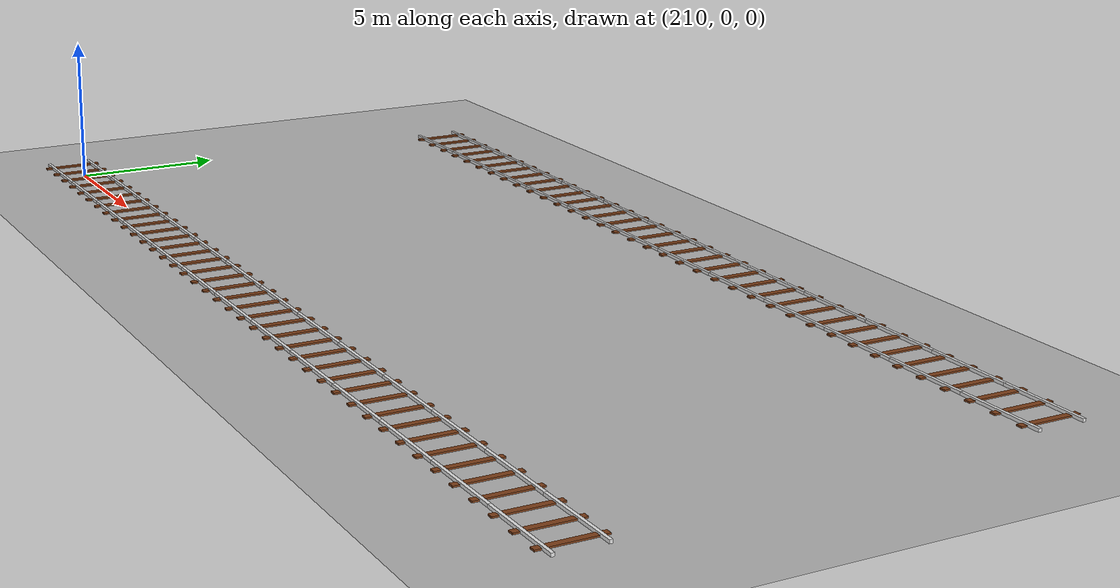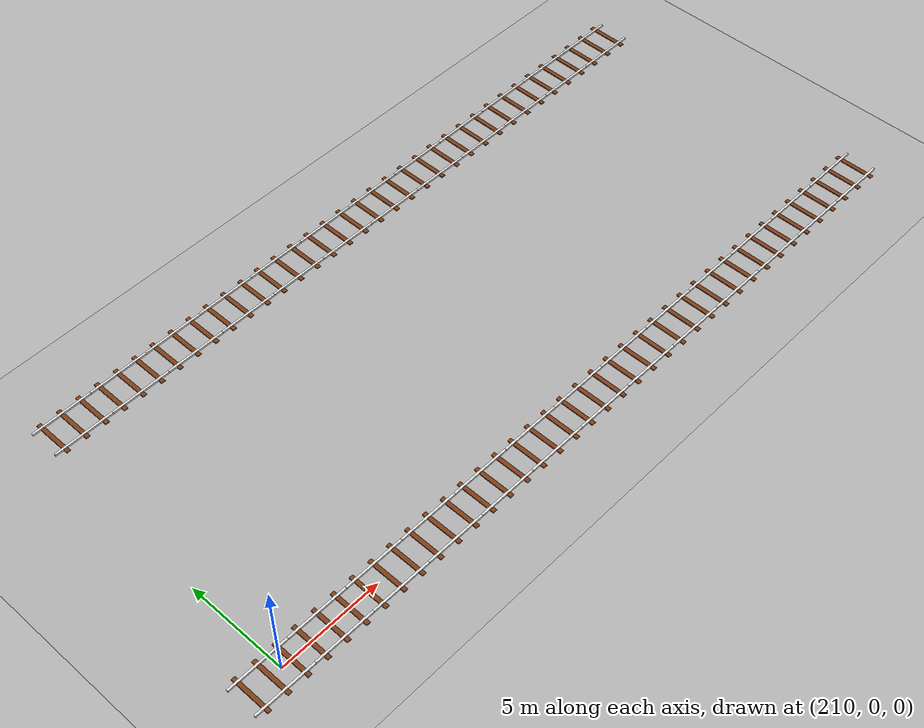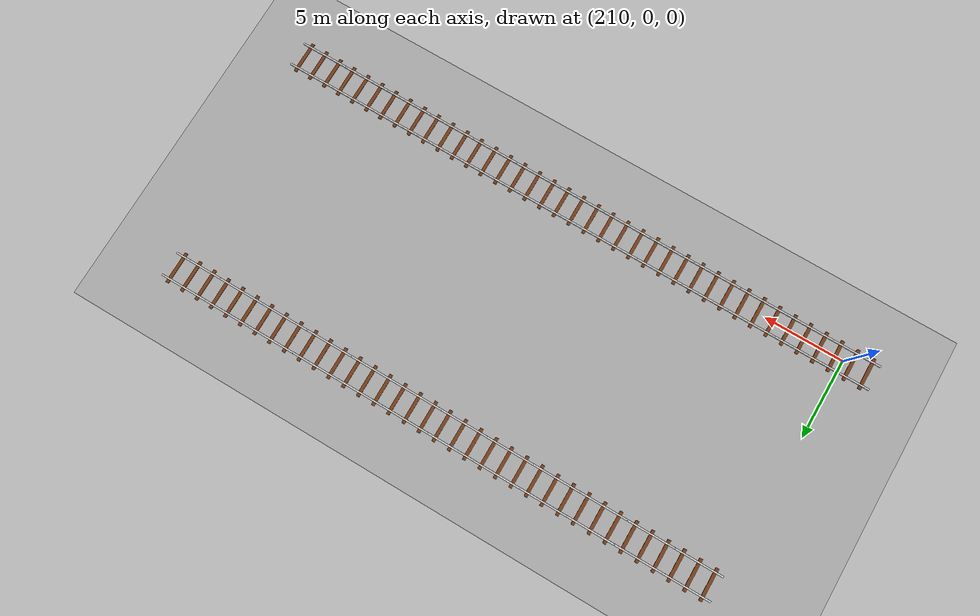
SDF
<sdf version="1.10">
 <world name="myworld">
  <model name="ground_plane">
   <static>true</static>
   <link name="link">
    <collision name="collision">
     <geometry><plane><normal>0 0 1</normal><size>1000 1000</size></plane></geometry>
    </collision>
    <visual name="visual">
     <geometry><plane><normal>0 0 1</normal><size>1000 1000</size></plane></geometry>
     <material>
      <ambient>0.699999988 0.699999988 0.699999988 1</ambient>
      <diffuse>0.699999988 0.699999988 0.699999988 1</diffuse>
     </material>
    </visual>
    <inertial>
     <mass>1</mass>
     <inertia><ixx>1</ixx><ixy>0</ixy><ixz>0</ixz><iyy>1</iyy><iyz>0</iyz><izz>1</izz></inertia>
    </inertial>
   </link>
  </model>
  <model name="rail12_37_22">
   <static>true</static>
   <pose>209.49199999999999 -0.025818600000000001 0 0 0 0</pose>
   <link name="rail_link">
    <visual name="rail_left">
     <pose>0 0.75 0.050000000000000003 0 0 0</pose>
     <geometry><box><size>3 0.10000000000000001 0.10000000000000001</size></box></geometry>
     <material>
      <ambient>0.800000012 0.800000012 0.800000012 1</ambient>
      <diffuse>0.899999976 0.899999976 0.899999976 1</diffuse>
     </material>
    </visual>
    <visual name="rail_right">
     <pose>0 -0.75 0.050000000000000003 0 0 0</pose>
     <geometry><box><size>3 0.10000000000000001 0.10000000000000001</size></box></geometry>
     <material>
      <ambient>0.800000012 0.800000012 0.800000012 1</ambient>
      <diffuse>0.899999976 0.899999976 0.899999976 1</diffuse>
     </material>
    </visual>
    <visual name="traverse_1">
     <pose>1 0 0.025000000000000001 0 0 0</pose>
     <geometry><box><size>0.20000000000000001 2 0.050000000000000003</size></box></geometry>
     <material>
      <ambient>0.400000006 0.200000003 0.100000001 1</ambient>
      <diffuse>0.5 0.25 0.100000001 1</diffuse>
     </material>
    </visual>
    <visual name="traverse_2">
     <pose>0 0 0.025000000000000001 0 0 0</pose>
     <geometry><box><size>0.20000000000000001 2 0.050000000000000003</size></box></geometry>
     <material>
      <ambient>0.400000006 0.200000003 0.100000001 1</ambient>
      <diffuse>0.5 0.25 0.100000001 1</diffuse>
     </material>
    </visual>
    <visual name="traverse_3">
     <pose>-1 0 0.025000000000000001 0 0 0</pose>
     <geometry><box><size>0.20000000000000001 2 0.050000000000000003</size></box></geometry>
     <material>
      <ambient>0.400000006 0.200000003 0.100000001 1</ambient>
      <diffuse>0.5 0.25 0.100000001 1</diffuse>
     </material>
    </visual>
   </link>
  </model>
  <model name="rail12_37_23">
   <static>true</static>
   <pose>212.48599999999999 -0.0242419 0 0 0 0</pose>
   <link name="rail_link">
    <visual name="rail_left">
     <pose>0 0.75 0.050000000000000003 0 0 0</pose>
     <geometry><box><size>3 0.10000000000000001 0.10000000000000001</size></box></geometry>
     <material>
      <ambient>0.800000012 0.800000012 0.800000012 1</ambient>
      <diffuse>0.899999976 0.899999976 0.899999976 1</diffuse>
     </material>
    </visual>
    <visual name="rail_right">
     <pose>0 -0.75 0.050000000000000003 0 0 0</pose>
     <geometry><box><size>3 0.10000000000000001 0.10000000000000001</size></box></geometry>
     <material>
      <ambient>0.800000012 0.800000012 0.800000012 1</ambient>
      <diffuse>0.899999976 0.899999976 0.899999976 1</diffuse>
     </material>
    </visual>
    <visual name="traverse_1">
     <pose>1 0 0.025000000000000001 0 0 0</pose>
     <geometry><box><size>0.20000000000000001 2 0.050000000000000003</size></box></geometry>
     <material>
      <ambient>0.400000006 0.200000003 0.100000001 1</ambient>
      <diffuse>0.5 0.25 0.100000001 1</diffuse>
     </material>
    </visual>
    <visual name="traverse_2">
     <pose>0 0 0.025000000000000001 0 0 0</pose>
     <geometry><box><size>0.20000000000000001 2 0.050000000000000003</size></box></geometry>
     <material>
      <ambient>0.400000006 0.200000003 0.100000001 1</ambient>
      <diffuse>0.5 0.25 0.100000001 1</diffuse>
     </material>
    </visual>
    <visual name="traverse_3">
     <pose>-1 0 0.025000000000000001 0 0 0</pose>
     <geometry><box><size>0.20000000000000001 2 0.050000000000000003</size></box></geometry>
     <material>
      <ambient>0.400000006 0.200000003 0.100000001 1</ambient>
      <diffuse>0.5 0.25 0.100000001 1</diffuse>
     </material>
    </visual>
   </link>
  </model>
  <model name="rail12_37_24">
   <static>true</static>
   <pose>215.477 -0.024157999999999999 0 0 0 0</pose>
   <link name="rail_link">
    <visual name="rail_left">
     <pose>0 0.75 0.050000000000000003 0 0 0</pose>
     <geometry><box><size>3 0.10000000000000001 0.10000000000000001</size></box></geometry>
     <material>
      <ambient>0.800000012 0.800000012 0.800000012 1</ambient>
      <diffuse>0.899999976 0.899999976 0.899999976 1</diffuse>
     </material>
    </visual>
    <visual name="rail_right">
     <pose>0 -0.75 0.050000000000000003 0 0 0</pose>
     <geometry><box><size>3 0.10000000000000001 0.10000000000000001</size></box></geometry>
     <material>
      <ambient>0.800000012 0.800000012 0.800000012 1</ambient>
      <diffuse>0.899999976 0.899999976 0.899999976 1</diffuse>
     </material>
    </visual>
    <visual name="traverse_1">
     <pose>1 0 0.025000000000000001 0 0 0</pose>
     <geometry><box><size>0.20000000000000001 2 0.050000000000000003</size></box></geometry>
     <material>
      <ambient>0.400000006 0.200000003 0.100000001 1</ambient>
      <diffuse>0.5 0.25 0.100000001 1</diffuse>
     </material>
    </visual>
    <visual name="traverse_2">
     <pose>0 0 0.025000000000000001 0 0 0</pose>
     <geometry><box><size>0.20000000000000001 2 0.050000000000000003</size></box></geometry>
     <material>
      <ambient>0.400000006 0.200000003 0.100000001 1</ambient>
      <diffuse>0.5 0.25 0.100000001 1</diffuse>
     </material>
    </visual>
    <visual name="traverse_3">
     <pose>-1 0 0.025000000000000001 0 0 0</pose>
     <geometry><box><size>0.20000000000000001 2 0.050000000000000003</size></box></geometry>
     <material>
      <ambient>0.400000006 0.200000003 0.100000001 1</ambient>
      <diffuse>0.5 0.25 0.100000001 1</diffuse>
     </material>
    </visual>
   </link>
  </model>
  <model name="rail12_37_25">
   <static>true</static>
   <pose>218.47999999999999 -0.025802800000000001 0 0 0 0</pose>
   <link name="rail_link">
    <visual name="rail_left">
     <pose>0 0.75 0.050000000000000003 0 0 0</pose>
     <geometry><box><size>3 0.10000000000000001 0.10000000000000001</size></box></geometry>
     <material>
      <ambient>0.800000012 0.800000012 0.800000012 1</ambient>
      <diffuse>0.899999976 0.899999976 0.899999976 1</diffuse>
     </material>
    </visual>
    <visual name="rail_right">
     <pose>0 -0.75 0.050000000000000003 0 0 0</pose>
     <geometry><box><size>3 0.10000000000000001 0.10000000000000001</size></box></geometry>
     <material>
      <ambient>0.800000012 0.800000012 0.800000012 1</ambient>
      <diffuse>0.899999976 0.899999976 0.899999976 1</diffuse>
     </material>
    </visual>
    <visual name="traverse_1">
     <pose>1 0 0.025000000000000001 0 0 0</pose>
     <geometry><box><size>0.20000000000000001 2 0.050000000000000003</size></box></geometry>
     <material>
      <ambient>0.400000006 0.200000003 0.100000001 1</ambient>
      <diffuse>0.5 0.25 0.100000001 1</diffuse>
     </material>
    </visual>
    <visual name="traverse_2">
     <pose>0 0 0.025000000000000001 0 0 0</pose>
     <geometry><box><size>0.20000000000000001 2 0.050000000000000003</size></box></geometry>
     <material>
      <ambient>0.400000006 0.200000003 0.100000001 1</ambient>
      <diffuse>0.5 0.25 0.100000001 1</diffuse>
     </material>
    </visual>
    <visual name="traverse_3">
     <pose>-1 0 0.025000000000000001 0 0 0</pose>
     <geometry><box><size>0.20000000000000001 2 0.050000000000000003</size></box></geometry>
     <material>
      <ambient>0.400000006 0.200000003 0.100000001 1</ambient>
      <diffuse>0.5 0.25 0.100000001 1</diffuse>
     </material>
    </visual>
   </link>
  </model>
  <model name="rail12_37_26">
   <static>true</static>
   <pose>221.471 -0.025149700000000001 0 0 0 0</pose>
   <link name="rail_link">
    <visual name="rail_left">
     <pose>0 0.75 0.050000000000000003 0 0 0</pose>
     <geometry><box><size>3 0.10000000000000001 0.10000000000000001</size></box></geometry>
     <material>
      <ambient>0.800000012 0.800000012 0.800000012 1</ambient>
      <diffuse>0.899999976 0.899999976 0.899999976 1</diffuse>
     </material>
    </visual>
    <visual name="rail_right">
     <pose>0 -0.75 0.050000000000000003 0 0 0</pose>
     <geometry><box><size>3 0.10000000000000001 0.10000000000000001</size></box></geometry>
     <material>
      <ambient>0.800000012 0.800000012 0.800000012 1</ambient>
      <diffuse>0.899999976 0.899999976 0.899999976 1</diffuse>
     </material>
    </visual>
    <visual name="traverse_1">
     <pose>1 0 0.025000000000000001 0 0 0</pose>
     <geometry><box><size>0.20000000000000001 2 0.050000000000000003</size></box></geometry>
     <material>
      <ambient>0.400000006 0.200000003 0.100000001 1</ambient>
      <diffuse>0.5 0.25 0.100000001 1</diffuse>
     </material>
    </visual>
    <visual name="traverse_2">
     <pose>0 0 0.025000000000000001 0 0 0</pose>
     <geometry><box><size>0.20000000000000001 2 0.050000000000000003</size></box></geometry>
     <material>
      <ambient>0.400000006 0.200000003 0.100000001 1</ambient>
      <diffuse>0.5 0.25 0.100000001 1</diffuse>
     </material>
    </visual>
    <visual name="traverse_3">
     <pose>-1 0 0.025000000000000001 0 0 0</pose>
     <geometry><box><size>0.20000000000000001 2 0.050000000000000003</size></box></geometry>
     <material>
      <ambient>0.400000006 0.200000003 0.100000001 1</ambient>
      <diffuse>0.5 0.25 0.100000001 1</diffuse>
     </material>
    </visual>
   </link>
  </model>
  <model name="rail12_37_27">
   <static>true</static>
   <pose>224.45699999999999 -0.025681099999999998 0 0 0 0</pose>
   <link name="rail_link">
    <visual name="rail_left">
     <pose>0 0.75 0.050000000000000003 0 0 0</pose>
     <geometry><box><size>3 0.10000000000000001 0.10000000000000001</size></box></geometry>
     <material>
      <ambient>0.800000012 0.800000012 0.800000012 1</ambient>
      <diffuse>0.899999976 0.899999976 0.899999976 1</diffuse>
     </material>
    </visual>
    <visual name="rail_right">
     <pose>0 -0.75 0.050000000000000003 0 0 0</pose>
     <geometry><box><size>3 0.10000000000000001 0.10000000000000001</size></box></geometry>
     <material>
      <ambient>0.800000012 0.800000012 0.800000012 1</ambient>
      <diffuse>0.899999976 0.899999976 0.899999976 1</diffuse>
     </material>
    </visual>
    <visual name="traverse_1">
     <pose>1 0 0.025000000000000001 0 0 0</pose>
     <geometry><box><size>0.20000000000000001 2 0.050000000000000003</size></box></geometry>
     <material>
      <ambient>0.400000006 0.200000003 0.100000001 1</ambient>
      <diffuse>0.5 0.25 0.100000001 1</diffuse>
     </material>
    </visual>
    <visual name="traverse_2">
     <pose>0 0 0.025000000000000001 0 0 0</pose>
     <geometry><box><size>0.20000000000000001 2 0.050000000000000003</size></box></geometry>
     <material>
      <ambient>0.400000006 0.200000003 0.100000001 1</ambient>
      <diffuse>0.5 0.25 0.100000001 1</diffuse>
     </material>
    </visual>
    <visual name="traverse_3">
     <pose>-1 0 0.025000000000000001 0 0 0</pose>
     <geometry><box><size>0.20000000000000001 2 0.050000000000000003</size></box></geometry>
     <material>
      <ambient>0.400000006 0.200000003 0.100000001 1</ambient>
      <diffuse>0.5 0.25 0.100000001 1</diffuse>
     </material>
    </visual>
   </link>
  </model>
  <model name="rail12_37_28">
   <static>true</static>
   <pose>227.446 -0.026520599999999998 0 0 0 0</pose>
   <link name="rail_link">
    <visual name="rail_left">
     <pose>0 0.75 0.050000000000000003 0 0 0</pose>
     <geometry><box><size>3 0.10000000000000001 0.10000000000000001</size></box></geometry>
     <material>
      <ambient>0.800000012 0.800000012 0.800000012 1</ambient>
      <diffuse>0.899999976 0.899999976 0.899999976 1</diffuse>
     </material>
    </visual>
    <visual name="rail_right">
     <pose>0 -0.75 0.050000000000000003 0 0 0</pose>
     <geometry><box><size>3 0.10000000000000001 0.10000000000000001</size></box></geometry>
     <material>
      <ambient>0.800000012 0.800000012 0.800000012 1</ambient>
      <diffuse>0.899999976 0.899999976 0.899999976 1</diffuse>
     </material>
    </visual>
    <visual name="traverse_1">
     <pose>1 0 0.025000000000000001 0 0 0</pose>
     <geometry><box><size>0.20000000000000001 2 0.050000000000000003</size></box></geometry>
     <material>
      <ambient>0.400000006 0.200000003 0.100000001 1</ambient>
      <diffuse>0.5 0.25 0.100000001 1</diffuse>
     </material>
    </visual>
    <visual name="traverse_2">
     <pose>0 0 0.025000000000000001 0 0 0</pose>
     <geometry><box><size>0.20000000000000001 2 0.050000000000000003</size></box></geometry>
     <material>
      <ambient>0.400000006 0.200000003 0.100000001 1</ambient>
      <diffuse>0.5 0.25 0.100000001 1</diffuse>
     </material>
    </visual>
    <visual name="traverse_3">
     <pose>-1 0 0.025000000000000001 0 0 0</pose>
     <geometry><box><size>0.20000000000000001 2 0.050000000000000003</size></box></geometry>
     <material>
      <ambient>0.400000006 0.200000003 0.100000001 1</ambient>
      <diffuse>0.5 0.25 0.100000001 1</diffuse>
     </material>
    </visual>
   </link>
  </model>
  <model name="rail12_37_29">
   <static>true</static>
   <pose>230.43199999999999 -0.0240409 0 0 0 0</pose>
   <link name="rail_link">
    <visual name="rail_left">
     <pose>0 0.75 0.050000000000000003 0 0 0</pose>
     <geometry><box><size>3 0.10000000000000001 0.10000000000000001</size></box></geometry>
     <material>
      <ambient>0.800000012 0.800000012 0.800000012 1</ambient>
      <diffuse>0.899999976 0.899999976 0.899999976 1</diffuse>
     </material>
    </visual>
    <visual name="rail_right">
     <pose>0 -0.75 0.050000000000000003 0 0 0</pose>
     <geometry><box><size>3 0.10000000000000001 0.10000000000000001</size></box></geometry>
     <material>
      <ambient>0.800000012 0.800000012 0.800000012 1</ambient>
      <diffuse>0.899999976 0.899999976 0.899999976 1</diffuse>
     </material>
    </visual>
    <visual name="traverse_1">
     <pose>1 0 0.025000000000000001 0 0 0</pose>
     <geometry><box><size>0.20000000000000001 2 0.050000000000000003</size></box></geometry>
     <material>
      <ambient>0.400000006 0.200000003 0.100000001 1</ambient>
      <diffuse>0.5 0.25 0.100000001 1</diffuse>
     </material>
    </visual>
    <visual name="traverse_2">
     <pose>0 0 0.025000000000000001 0 0 0</pose>
     <geometry><box><size>0.20000000000000001 2 0.050000000000000003</size></box></geometry>
     <material>
      <ambient>0.400000006 0.200000003 0.100000001 1</ambient>
      <diffuse>0.5 0.25 0.100000001 1</diffuse>
     </material>
    </visual>
    <visual name="traverse_3">
     <pose>-1 0 0.025000000000000001 0 0 0</pose>
     <geometry><box><size>0.20000000000000001 2 0.050000000000000003</size></box></geometry>
     <material>
      <ambient>0.400000006 0.200000003 0.100000001 1</ambient>
      <diffuse>0.5 0.25 0.100000001 1</diffuse>
     </material>
    </visual>
   </link>
  </model>
  <model name="rail12_37_30">
   <static>true</static>
   <pose>233.42500000000001 -0.022962400000000001 0 0 0 0</pose>
   <link name="rail_link">
    <visual name="rail_left">
     <pose>0 0.75 0.050000000000000003 0 0 0</pose>
     <geometry><box><size>3 0.10000000000000001 0.10000000000000001</size></box></geometry>
     <material>
      <ambient>0.800000012 0.800000012 0.800000012 1</ambient>
      <diffuse>0.899999976 0.899999976 0.899999976 1</diffuse>
     </material>
    </visual>
    <visual name="rail_right">
     <pose>0 -0.75 0.050000000000000003 0 0 0</pose>
     <geometry><box><size>3 0.10000000000000001 0.10000000000000001</size></box></geometry>
     <material>
      <ambient>0.800000012 0.800000012 0.800000012 1</ambient>
      <diffuse>0.899999976 0.899999976 0.899999976 1</diffuse>
     </material>
    </visual>
    <visual name="traverse_1">
     <pose>1 0 0.025000000000000001 0 0 0</pose>
     <geometry><box><size>0.20000000000000001 2 0.050000000000000003</size></box></geometry>
     <material>
      <ambient>0.400000006 0.200000003 0.100000001 1</ambient>
      <diffuse>0.5 0.25 0.100000001 1</diffuse>
     </material>
    </visual>
    <visual name="traverse_2">
     <pose>0 0 0.025000000000000001 0 0 0</pose>
     <geometry><box><size>0.20000000000000001 2 0.050000000000000003</size></box></geometry>
     <material>
      <ambient>0.400000006 0.200000003 0.100000001 1</ambient>
      <diffuse>0.5 0.25 0.100000001 1</diffuse>
     </material>
    </visual>
    <visual name="traverse_3">
     <pose>-1 0 0.025000000000000001 0 0 0</pose>
     <geometry><box><size>0.20000000000000001 2 0.050000000000000003</size></box></geometry>
     <material>
      <ambient>0.400000006 0.200000003 0.100000001 1</ambient>
      <diffuse>0.5 0.25 0.100000001 1</diffuse>
     </material>
    </visual>
   </link>
  </model>
  <model name="rail12_37_31">
   <static>true</static>
   <pose>236.41399999999999 -0.0242023 0 0 0 0</pose>
   <link name="rail_link">
    <visual name="rail_left">
     <pose>0 0.75 0.050000000000000003 0 0 0</pose>
     <geometry><box><size>3 0.10000000000000001 0.10000000000000001</size></box></geometry>
     <material>
      <ambient>0.800000012 0.800000012 0.800000012 1</ambient>
      <diffuse>0.899999976 0.899999976 0.899999976 1</diffuse>
     </material>
    </visual>
    <visual name="rail_right">
     <pose>0 -0.75 0.050000000000000003 0 0 0</pose>
     <geometry><box><size>3 0.10000000000000001 0.10000000000000001</size></box></geometry>
     <material>
      <ambient>0.800000012 0.800000012 0.800000012 1</ambient>
      <diffuse>0.899999976 0.899999976 0.899999976 1</diffuse>
     </material>
    </visual>
    <visual name="traverse_1">
     <pose>1 0 0.025000000000000001 0 0 0</pose>
     <geometry><box><size>0.20000000000000001 2 0.050000000000000003</size></box></geometry>
     <material>
      <ambient>0.400000006 0.200000003 0.100000001 1</ambient>
      <diffuse>0.5 0.25 0.100000001 1</diffuse>
     </material>
    </visual>
    <visual name="traverse_2">
     <pose>0 0 0.025000000000000001 0 0 0</pose>
     <geometry><box><size>0.20000000000000001 2 0.050000000000000003</size></box></geometry>
     <material>
      <ambient>0.400000006 0.200000003 0.100000001 1</ambient>
      <diffuse>0.5 0.25 0.100000001 1</diffuse>
     </material>
    </visual>
    <visual name="traverse_3">
     <pose>-1 0 0.025000000000000001 0 0 0</pose>
     <geometry><box><size>0.20000000000000001 2 0.050000000000000003</size></box></geometry>
     <material>
      <ambient>0.400000006 0.200000003 0.100000001 1</ambient>
      <diffuse>0.5 0.25 0.100000001 1</diffuse>
     </material>
    </visual>
   </link>
  </model>
  <model name="rail12_37_32">
   <static>true</static>
   <pose>239.40100000000001 -0.0245206 0 0 0 0</pose>
   <link name="rail_link">
    <visual name="rail_left">
     <pose>0 0.75 0.050000000000000003 0 0 0</pose>
     <geometry><box><size>3 0.10000000000000001 0.10000000000000001</size></box></geometry>
     <material>
      <ambient>0.800000012 0.800000012 0.800000012 1</ambient>
      <diffuse>0.899999976 0.899999976 0.899999976 1</diffuse>
     </material>
    </visual>
    <visual name="rail_right">
     <pose>0 -0.75 0.050000000000000003 0 0 0</pose>
     <geometry><box><size>3 0.10000000000000001 0.10000000000000001</size></box></geometry>
     <material>
      <ambient>0.800000012 0.800000012 0.800000012 1</ambient>
      <diffuse>0.899999976 0.899999976 0.899999976 1</diffuse>
     </material>
    </visual>
    <visual name="traverse_1">
     <pose>1 0 0.025000000000000001 0 0 0</pose>
     <geometry><box><size>0.20000000000000001 2 0.050000000000000003</size></box></geometry>
     <material>
      <ambient>0.400000006 0.200000003 0.100000001 1</ambient>
      <diffuse>0.5 0.25 0.100000001 1</diffuse>
     </material>
    </visual>
    <visual name="traverse_2">
     <pose>0 0 0.025000000000000001 0 0 0</pose>
     <geometry><box><size>0.20000000000000001 2 0.050000000000000003</size></box></geometry>
     <material>
      <ambient>0.400000006 0.200000003 0.100000001 1</ambient>
      <diffuse>0.5 0.25 0.100000001 1</diffuse>
     </material>
    </visual>
    <visual name="traverse_3">
     <pose>-1 0 0.025000000000000001 0 0 0</pose>
     <geometry><box><size>0.20000000000000001 2 0.050000000000000003</size></box></geometry>
     <material>
      <ambient>0.400000006 0.200000003 0.100000001 1</ambient>
      <diffuse>0.5 0.25 0.100000001 1</diffuse>
     </material>
    </visual>
   </link>
  </model>
  <model name="rail12_37_33">
   <static>true</static>
   <pose>242.39099999999999 -0.025925900000000002 0 0 0 0</pose>
   <link name="rail_link">
    <visual name="rail_left">
     <pose>0 0.75 0.050000000000000003 0 0 0</pose>
     <geometry><box><size>3 0.10000000000000001 0.10000000000000001</size></box></geometry>
     <material>
      <ambient>0.800000012 0.800000012 0.800000012 1</ambient>
      <diffuse>0.899999976 0.899999976 0.899999976 1</diffuse>
     </material>
    </visual>
    <visual name="rail_right">
     <pose>0 -0.75 0.050000000000000003 0 0 0</pose>
     <geometry><box><size>3 0.10000000000000001 0.10000000000000001</size></box></geometry>
     <material>
      <ambient>0.800000012 0.800000012 0.800000012 1</ambient>
      <diffuse>0.899999976 0.899999976 0.899999976 1</diffuse>
     </material>
    </visual>
    <visual name="traverse_1">
     <pose>1 0 0.025000000000000001 0 0 0</pose>
     <geometry><box><size>0.20000000000000001 2 0.050000000000000003</size></box></geometry>
     <material>
      <ambient>0.400000006 0.200000003 0.100000001 1</ambient>
      <diffuse>0.5 0.25 0.100000001 1</diffuse>
     </material>
    </visual>
    <visual name="traverse_2">
     <pose>0 0 0.025000000000000001 0 0 0</pose>
     <geometry><box><size>0.20000000000000001 2 0.050000000000000003</size></box></geometry>
     <material>
      <ambient>0.400000006 0.200000003 0.100000001 1</ambient>
      <diffuse>0.5 0.25 0.100000001 1</diffuse>
     </material>
    </visual>
    <visual name="traverse_3">
     <pose>-1 0 0.025000000000000001 0 0 0</pose>
     <geometry><box><size>0.20000000000000001 2 0.050000000000000003</size></box></geometry>
     <material>
      <ambient>0.400000006 0.200000003 0.100000001 1</ambient>
      <diffuse>0.5 0.25 0.100000001 1</diffuse>
     </material>
    </visual>
   </link>
  </model>
  <model name="rail12_37_34">
   <static>true</static>
   <pose>245.37799999999999 -0.030013399999999999 0 0 0 0</pose>
   <link name="rail_link">
    <visual name="rail_left">
     <pose>0 0.75 0.050000000000000003 0 0 0</pose>
     <geometry><box><size>3 0.10000000000000001 0.10000000000000001</size></box></geometry>
     <material>
      <ambient>0.800000012 0.800000012 0.800000012 1</ambient>
      <diffuse>0.899999976 0.899999976 0.899999976 1</diffuse>
     </material>
    </visual>
    <visual name="rail_right">
     <pose>0 -0.75 0.050000000000000003 0 0 0</pose>
     <geometry><box><size>3 0.10000000000000001 0.10000000000000001</size></box></geometry>
     <material>
      <ambient>0.800000012 0.800000012 0.800000012 1</ambient>
      <diffuse>0.899999976 0.899999976 0.899999976 1</diffuse>
     </material>
    </visual>
    <visual name="traverse_1">
     <pose>1 0 0.025000000000000001 0 0 0</pose>
     <geometry><box><size>0.20000000000000001 2 0.050000000000000003</size></box></geometry>
     <material>
      <ambient>0.400000006 0.200000003 0.100000001 1</ambient>
      <diffuse>0.5 0.25 0.100000001 1</diffuse>
     </material>
    </visual>
    <visual name="traverse_2">
     <pose>0 0 0.025000000000000001 0 0 0</pose>
     <geometry><box><size>0.20000000000000001 2 0.050000000000000003</size></box></geometry>
     <material>
      <ambient>0.400000006 0.200000003 0.100000001 1</ambient>
      <diffuse>0.5 0.25 0.100000001 1</diffuse>
     </material>
    </visual>
    <visual name="traverse_3">
     <pose>-1 0 0.025000000000000001 0 0 0</pose>
     <geometry><box><size>0.20000000000000001 2 0.050000000000000003</size></box></geometry>
     <material>
      <ambient>0.400000006 0.200000003 0.100000001 1</ambient>
      <diffuse>0.5 0.25 0.100000001 1</diffuse>
     </material>
    </visual>
   </link>
  </model>
  <model name="rail12_37_94">
   <static>true</static>
   <pose>211.797 14.6153000000000004 0 0 0 0</pose>
   <link name="rail_link">
    <visual name="rail_left">
     <pose>0 0.75 0.050000000000000003 0 0 0</pose>
     <geometry><box><size>3 0.10000000000000001 0.10000000000000001</size></box></geometry>
     <material>
      <ambient>0.800000012 0.800000012 0.800000012 1</ambient>
      <diffuse>0.899999976 0.899999976 0.899999976 1</diffuse>
     </material>
    </visual>
    <visual name="rail_right">
     <pose>0 -0.75 0.050000000000000003 0 0 0</pose>
     <geometry><box><size>3 0.10000000000000001 0.10000000000000001</size></box></geometry>
     <material>
      <ambient>0.800000012 0.800000012 0.800000012 1</ambient>
      <diffuse>0.899999976 0.899999976 0.899999976 1</diffuse>
     </material>
    </visual>
    <visual name="traverse_1">
     <pose>1 0 0.025000000000000001 0 0 0</pose>
     <geometry><box><size>0.20000000000000001 2 0.050000000000000003</size></box></geometry>
     <material>
      <ambient>0.400000006 0.200000003 0.100000001 1</ambient>
      <diffuse>0.5 0.25 0.100000001 1</diffuse>
     </material>
    </visual>
    <visual name="traverse_2">
     <pose>0 0 0.025000000000000001 0 0 0</pose>
     <geometry><box><size>0.20000000000000001 2 0.050000000000000003</size></box></geometry>
     <material>
      <ambient>0.400000006 0.200000003 0.100000001 1</ambient>
      <diffuse>0.5 0.25 0.100000001 1</diffuse>
     </material>
    </visual>
    <visual name="traverse_3">
     <pose>-1 0 0.025000000000000001 0 0 0</pose>
     <geometry><box><size>0.20000000000000001 2 0.050000000000000003</size></box></geometry>
     <material>
      <ambient>0.400000006 0.200000003 0.100000001 1</ambient>
      <diffuse>0.5 0.25 0.100000001 1</diffuse>
     </material>
    </visual>
   </link>
  </model>
  <model name="rail12_37_95">
   <static>true</static>
   <pose>214.77799999999999 14.6177400000000004 0 0 0 0</pose>
   <link name="rail_link">
    <visual name="rail_left">
     <pose>0 0.75 0.050000000000000003 0 0 0</pose>
     <geometry><box><size>3 0.10000000000000001 0.10000000000000001</size></box></geometry>
     <material>
      <ambient>0.800000012 0.800000012 0.800000012 1</ambient>
      <diffuse>0.899999976 0.899999976 0.899999976 1</diffuse>
     </material>
    </visual>
    <visual name="rail_right">
     <pose>0 -0.75 0.050000000000000003 0 0 0</pose>
     <geometry><box><size>3 0.10000000000000001 0.10000000000000001</size></box></geometry>
     <material>
      <ambient>0.800000012 0.800000012 0.800000012 1</ambient>
      <diffuse>0.899999976 0.899999976 0.899999976 1</diffuse>
     </material>
    </visual>
    <visual name="traverse_1">
     <pose>1 0 0.025000000000000001 0 0 0</pose>
     <geometry><box><size>0.20000000000000001 2 0.050000000000000003</size></box></geometry>
     <material>
      <ambient>0.400000006 0.200000003 0.100000001 1</ambient>
      <diffuse>0.5 0.25 0.100000001 1</diffuse>
     </material>
    </visual>
    <visual name="traverse_2">
     <pose>0 0 0.025000000000000001 0 0 0</pose>
     <geometry><box><size>0.20000000000000001 2 0.050000000000000003</size></box></geometry>
     <material>
      <ambient>0.400000006 0.200000003 0.100000001 1</ambient>
      <diffuse>0.5 0.25 0.100000001 1</diffuse>
     </material>
    </visual>
    <visual name="traverse_3">
     <pose>-1 0 0.025000000000000001 0 0 0</pose>
     <geometry><box><size>0.20000000000000001 2 0.050000000000000003</size></box></geometry>
     <material>
      <ambient>0.400000006 0.200000003 0.100000001 1</ambient>
      <diffuse>0.5 0.25 0.100000001 1</diffuse>
     </material>
    </visual>
   </link>
  </model>
  <model name="rail12_37_96">
   <static>true</static>
   <pose>217.779 14.6230599999999997 0 0 0 0</pose>
   <link name="rail_link">
    <visual name="rail_left">
     <pose>0 0.75 0.050000000000000003 0 0 0</pose>
     <geometry><box><size>3 0.10000000000000001 0.10000000000000001</size></box></geometry>
     <material>
      <ambient>0.800000012 0.800000012 0.800000012 1</ambient>
      <diffuse>0.899999976 0.899999976 0.899999976 1</diffuse>
     </material>
    </visual>
    <visual name="rail_right">
     <pose>0 -0.75 0.050000000000000003 0 0 0</pose>
     <geometry><box><size>3 0.10000000000000001 0.10000000000000001</size></box></geometry>
     <material>
      <ambient>0.800000012 0.800000012 0.800000012 1</ambient>
      <diffuse>0.899999976 0.899999976 0.899999976 1</diffuse>
     </material>
    </visual>
    <visual name="traverse_1">
     <pose>1 0 0.025000000000000001 0 0 0</pose>
     <geometry><box><size>0.20000000000000001 2 0.050000000000000003</size></box></geometry>
     <material>
      <ambient>0.400000006 0.200000003 0.100000001 1</ambient>
      <diffuse>0.5 0.25 0.100000001 1</diffuse>
     </material>
    </visual>
    <visual name="traverse_2">
     <pose>0 0 0.025000000000000001 0 0 0</pose>
     <geometry><box><size>0.20000000000000001 2 0.050000000000000003</size></box></geometry>
     <material>
      <ambient>0.400000006 0.200000003 0.100000001 1</ambient>
      <diffuse>0.5 0.25 0.100000001 1</diffuse>
     </material>
    </visual>
    <visual name="traverse_3">
     <pose>-1 0 0.025000000000000001 0 0 0</pose>
     <geometry><box><size>0.20000000000000001 2 0.050000000000000003</size></box></geometry>
     <material>
      <ambient>0.400000006 0.200000003 0.100000001 1</ambient>
      <diffuse>0.5 0.25 0.100000001 1</diffuse>
     </material>
    </visual>
   </link>
  </model>
  <model name="rail12_37_97">
   <static>true</static>
   <pose>220.773 14.6294300000000002 0 0 0 0</pose>
   <link name="rail_link">
    <visual name="rail_left">
     <pose>0 0.75 0.050000000000000003 0 0 0</pose>
     <geometry><box><size>3 0.10000000000000001 0.10000000000000001</size></box></geometry>
     <material>
      <ambient>0.800000012 0.800000012 0.800000012 1</ambient>
      <diffuse>0.899999976 0.899999976 0.899999976 1</diffuse>
     </material>
    </visual>
    <visual name="rail_right">
     <pose>0 -0.75 0.050000000000000003 0 0 0</pose>
     <geometry><box><size>3 0.10000000000000001 0.10000000000000001</size></box></geometry>
     <material>
      <ambient>0.800000012 0.800000012 0.800000012 1</ambient>
      <diffuse>0.899999976 0.899999976 0.899999976 1</diffuse>
     </material>
    </visual>
    <visual name="traverse_1">
     <pose>1 0 0.025000000000000001 0 0 0</pose>
     <geometry><box><size>0.20000000000000001 2 0.050000000000000003</size></box></geometry>
     <material>
      <ambient>0.400000006 0.200000003 0.100000001 1</ambient>
      <diffuse>0.5 0.25 0.100000001 1</diffuse>
     </material>
    </visual>
    <visual name="traverse_2">
     <pose>0 0 0.025000000000000001 0 0 0</pose>
     <geometry><box><size>0.20000000000000001 2 0.050000000000000003</size></box></geometry>
     <material>
      <ambient>0.400000006 0.200000003 0.100000001 1</ambient>
      <diffuse>0.5 0.25 0.100000001 1</diffuse>
     </material>
    </visual>
    <visual name="traverse_3">
     <pose>-1 0 0.025000000000000001 0 0 0</pose>
     <geometry><box><size>0.20000000000000001 2 0.050000000000000003</size></box></geometry>
     <material>
      <ambient>0.400000006 0.200000003 0.100000001 1</ambient>
      <diffuse>0.5 0.25 0.100000001 1</diffuse>
     </material>
    </visual>
   </link>
  </model>
  <model name="rail12_37_98">
   <static>true</static>
   <pose>223.755 14.6354899999999999 0 0 0 0</pose>
   <link name="rail_link">
    <visual name="rail_left">
     <pose>0 0.75 0.050000000000000003 0 0 0</pose>
     <geometry><box><size>3 0.10000000000000001 0.10000000000000001</size></box></geometry>
     <material>
      <ambient>0.800000012 0.800000012 0.800000012 1</ambient>
      <diffuse>0.899999976 0.899999976 0.899999976 1</diffuse>
     </material>
    </visual>
    <visual name="rail_right">
     <pose>0 -0.75 0.050000000000000003 0 0 0</pose>
     <geometry><box><size>3 0.10000000000000001 0.10000000000000001</size></box></geometry>
     <material>
      <ambient>0.800000012 0.800000012 0.800000012 1</ambient>
      <diffuse>0.899999976 0.899999976 0.899999976 1</diffuse>
     </material>
    </visual>
    <visual name="traverse_1">
     <pose>1 0 0.025000000000000001 0 0 0</pose>
     <geometry><box><size>0.20000000000000001 2 0.050000000000000003</size></box></geometry>
     <material>
      <ambient>0.400000006 0.200000003 0.100000001 1</ambient>
      <diffuse>0.5 0.25 0.100000001 1</diffuse>
     </material>
    </visual>
    <visual name="traverse_2">
     <pose>0 0 0.025000000000000001 0 0 0</pose>
     <geometry><box><size>0.20000000000000001 2 0.050000000000000003</size></box></geometry>
     <material>
      <ambient>0.400000006 0.200000003 0.100000001 1</ambient>
      <diffuse>0.5 0.25 0.100000001 1</diffuse>
     </material>
    </visual>
    <visual name="traverse_3">
     <pose>-1 0 0.025000000000000001 0 0 0</pose>
     <geometry><box><size>0.20000000000000001 2 0.050000000000000003</size></box></geometry>
     <material>
      <ambient>0.400000006 0.200000003 0.100000001 1</ambient>
      <diffuse>0.5 0.25 0.100000001 1</diffuse>
     </material>
    </visual>
   </link>
  </model>
  <model name="rail12_37_99">
   <static>true</static>
   <pose>226.75200000000001 14.6295099999999998 0 0 0 0</pose>
   <link name="rail_link">
    <visual name="rail_left">
     <pose>0 0.75 0.050000000000000003 0 0 0</pose>
     <geometry><box><size>3 0.10000000000000001 0.10000000000000001</size></box></geometry>
     <material>
      <ambient>0.800000012 0.800000012 0.800000012 1</ambient>
      <diffuse>0.899999976 0.899999976 0.899999976 1</diffuse>
     </material>
    </visual>
    <visual name="rail_right">
     <pose>0 -0.75 0.050000000000000003 0 0 0</pose>
     <geometry><box><size>3 0.10000000000000001 0.10000000000000001</size></box></geometry>
     <material>
      <ambient>0.800000012 0.800000012 0.800000012 1</ambient>
      <diffuse>0.899999976 0.899999976 0.899999976 1</diffuse>
     </material>
    </visual>
    <visual name="traverse_1">
     <pose>1 0 0.025000000000000001 0 0 0</pose>
     <geometry><box><size>0.20000000000000001 2 0.050000000000000003</size></box></geometry>
     <material>
      <ambient>0.400000006 0.200000003 0.100000001 1</ambient>
      <diffuse>0.5 0.25 0.100000001 1</diffuse>
     </material>
    </visual>
    <visual name="traverse_2">
     <pose>0 0 0.025000000000000001 0 0 0</pose>
     <geometry><box><size>0.20000000000000001 2 0.050000000000000003</size></box></geometry>
     <material>
      <ambient>0.400000006 0.200000003 0.100000001 1</ambient>
      <diffuse>0.5 0.25 0.100000001 1</diffuse>
     </material>
    </visual>
    <visual name="traverse_3">
     <pose>-1 0 0.025000000000000001 0 0 0</pose>
     <geometry><box><size>0.20000000000000001 2 0.050000000000000003</size></box></geometry>
     <material>
      <ambient>0.400000006 0.200000003 0.100000001 1</ambient>
      <diffuse>0.5 0.25 0.100000001 1</diffuse>
     </material>
    </visual>
   </link>
  </model>
  <model name="rail12_37_100">
   <static>true</static>
   <pose>229.72999999999999 14.62934 0 0 0 0</pose>
   <link name="rail_link">
    <visual name="rail_left">
     <pose>0 0.75 0.050000000000000003 0 0 0</pose>
     <geometry><box><size>3 0.10000000000000001 0.10000000000000001</size></box></geometry>
     <material>
      <ambient>0.800000012 0.800000012 0.800000012 1</ambient>
      <diffuse>0.899999976 0.899999976 0.899999976 1</diffuse>
     </material>
    </visual>
    <visual name="rail_right">
     <pose>0 -0.75 0.050000000000000003 0 0 0</pose>
     <geometry><box><size>3 0.10000000000000001 0.10000000000000001</size></box></geometry>
     <material>
      <ambient>0.800000012 0.800000012 0.800000012 1</ambient>
      <diffuse>0.899999976 0.899999976 0.899999976 1</diffuse>
     </material>
    </visual>
    <visual name="traverse_1">
     <pose>1 0 0.025000000000000001 0 0 0</pose>
     <geometry><box><size>0.20000000000000001 2 0.050000000000000003</size></box></geometry>
     <material>
      <ambient>0.400000006 0.200000003 0.100000001 1</ambient>
      <diffuse>0.5 0.25 0.100000001 1</diffuse>
     </material>
    </visual>
    <visual name="traverse_2">
     <pose>0 0 0.025000000000000001 0 0 0</pose>
     <geometry><box><size>0.20000000000000001 2 0.050000000000000003</size></box></geometry>
     <material>
      <ambient>0.400000006 0.200000003 0.100000001 1</ambient>
      <diffuse>0.5 0.25 0.100000001 1</diffuse>
     </material>
    </visual>
    <visual name="traverse_3">
     <pose>-1 0 0.025000000000000001 0 0 0</pose>
     <geometry><box><size>0.20000000000000001 2 0.050000000000000003</size></box></geometry>
     <material>
      <ambient>0.400000006 0.200000003 0.100000001 1</ambient>
      <diffuse>0.5 0.25 0.100000001 1</diffuse>
     </material>
    </visual>
   </link>
  </model>
  <model name="rail12_37_101">
   <static>true</static>
   <pose>232.732 14.6281299999999996 0 0 0 0</pose>
   <link name="rail_link">
    <visual name="rail_left">
     <pose>0 0.75 0.050000000000000003 0 0 0</pose>
     <geometry><box><size>3 0.10000000000000001 0.10000000000000001</size></box></geometry>
     <material>
      <ambient>0.800000012 0.800000012 0.800000012 1</ambient>
      <diffuse>0.899999976 0.899999976 0.899999976 1</diffuse>
     </material>
    </visual>
    <visual name="rail_right">
     <pose>0 -0.75 0.050000000000000003 0 0 0</pose>
     <geometry><box><size>3 0.10000000000000001 0.10000000000000001</size></box></geometry>
     <material>
      <ambient>0.800000012 0.800000012 0.800000012 1</ambient>
      <diffuse>0.899999976 0.899999976 0.899999976 1</diffuse>
     </material>
    </visual>
    <visual name="traverse_1">
     <pose>1 0 0.025000000000000001 0 0 0</pose>
     <geometry><box><size>0.20000000000000001 2 0.050000000000000003</size></box></geometry>
     <material>
      <ambient>0.400000006 0.200000003 0.100000001 1</ambient>
      <diffuse>0.5 0.25 0.100000001 1</diffuse>
     </material>
    </visual>
    <visual name="traverse_2">
     <pose>0 0 0.025000000000000001 0 0 0</pose>
     <geometry><box><size>0.20000000000000001 2 0.050000000000000003</size></box></geometry>
     <material>
      <ambient>0.400000006 0.200000003 0.100000001 1</ambient>
      <diffuse>0.5 0.25 0.100000001 1</diffuse>
     </material>
    </visual>
    <visual name="traverse_3">
     <pose>-1 0 0.025000000000000001 0 0 0</pose>
     <geometry><box><size>0.20000000000000001 2 0.050000000000000003</size></box></geometry>
     <material>
      <ambient>0.400000006 0.200000003 0.100000001 1</ambient>
      <diffuse>0.5 0.25 0.100000001 1</diffuse>
     </material>
    </visual>
   </link>
  </model>
  <model name="rail12_37_102">
   <static>true</static>
   <pose>235.732 14.6313199999999997 0 0 0 0</pose>
   <link name="rail_link">
    <visual name="rail_left">
     <pose>0 0.75 0.050000000000000003 0 0 0</pose>
     <geometry><box><size>3 0.10000000000000001 0.10000000000000001</size></box></geometry>
     <material>
      <ambient>0.800000012 0.800000012 0.800000012 1</ambient>
      <diffuse>0.899999976 0.899999976 0.899999976 1</diffuse>
     </material>
    </visual>
    <visual name="rail_right">
     <pose>0 -0.75 0.050000000000000003 0 0 0</pose>
     <geometry><box><size>3 0.10000000000000001 0.10000000000000001</size></box></geometry>
     <material>
      <ambient>0.800000012 0.800000012 0.800000012 1</ambient>
      <diffuse>0.899999976 0.899999976 0.899999976 1</diffuse>
     </material>
    </visual>
    <visual name="traverse_1">
     <pose>1 0 0.025000000000000001 0 0 0</pose>
     <geometry><box><size>0.20000000000000001 2 0.050000000000000003</size></box></geometry>
     <material>
      <ambient>0.400000006 0.200000003 0.100000001 1</ambient>
      <diffuse>0.5 0.25 0.100000001 1</diffuse>
     </material>
    </visual>
    <visual name="traverse_2">
     <pose>0 0 0.025000000000000001 0 0 0</pose>
     <geometry><box><size>0.20000000000000001 2 0.050000000000000003</size></box></geometry>
     <material>
      <ambient>0.400000006 0.200000003 0.100000001 1</ambient>
      <diffuse>0.5 0.25 0.100000001 1</diffuse>
     </material>
    </visual>
    <visual name="traverse_3">
     <pose>-1 0 0.025000000000000001 0 0 0</pose>
     <geometry><box><size>0.20000000000000001 2 0.050000000000000003</size></box></geometry>
     <material>
      <ambient>0.400000006 0.200000003 0.100000001 1</ambient>
      <diffuse>0.5 0.25 0.100000001 1</diffuse>
     </material>
    </visual>
   </link>
  </model>
  <model name="rail12_37_103">
   <static>true</static>
   <pose>238.72499999999999 14.6404699999999997 0 0 0 0</pose>
   <link name="rail_link">
    <visual name="rail_left">
     <pose>0 0.75 0.050000000000000003 0 0 0</pose>
     <geometry><box><size>3 0.10000000000000001 0.10000000000000001</size></box></geometry>
     <material>
      <ambient>0.800000012 0.800000012 0.800000012 1</ambient>
      <diffuse>0.899999976 0.899999976 0.899999976 1</diffuse>
     </material>
    </visual>
    <visual name="rail_right">
     <pose>0 -0.75 0.050000000000000003 0 0 0</pose>
     <geometry><box><size>3 0.10000000000000001 0.10000000000000001</size></box></geometry>
     <material>
      <ambient>0.800000012 0.800000012 0.800000012 1</ambient>
      <diffuse>0.899999976 0.899999976 0.899999976 1</diffuse>
     </material>
    </visual>
    <visual name="traverse_1">
     <pose>1 0 0.025000000000000001 0 0 0</pose>
     <geometry><box><size>0.20000000000000001 2 0.050000000000000003</size></box></geometry>
     <material>
      <ambient>0.400000006 0.200000003 0.100000001 1</ambient>
      <diffuse>0.5 0.25 0.100000001 1</diffuse>
     </material>
    </visual>
    <visual name="traverse_2">
     <pose>0 0 0.025000000000000001 0 0 0</pose>
     <geometry><box><size>0.20000000000000001 2 0.050000000000000003</size></box></geometry>
     <material>
      <ambient>0.400000006 0.200000003 0.100000001 1</ambient>
      <diffuse>0.5 0.25 0.100000001 1</diffuse>
     </material>
    </visual>
    <visual name="traverse_3">
     <pose>-1 0 0.025000000000000001 0 0 0</pose>
     <geometry><box><size>0.20000000000000001 2 0.050000000000000003</size></box></geometry>
     <material>
      <ambient>0.400000006 0.200000003 0.100000001 1</ambient>
      <diffuse>0.5 0.25 0.100000001 1</diffuse>
     </material>
    </visual>
   </link>
  </model>
  <model name="rail12_37_104">
   <static>true</static>
   <pose>241.72399999999999 14.6397199999999996 0 0 0 0</pose>
   <link name="rail_link">
    <visual name="rail_left">
     <pose>0 0.75 0.050000000000000003 0 0 0</pose>
     <geometry><box><size>3 0.10000000000000001 0.10000000000000001</size></box></geometry>
     <material>
      <ambient>0.800000012 0.800000012 0.800000012 1</ambient>
      <diffuse>0.899999976 0.899999976 0.899999976 1</diffuse>
     </material>
    </visual>
    <visual name="rail_right">
     <pose>0 -0.75 0.050000000000000003 0 0 0</pose>
     <geometry><box><size>3 0.10000000000000001 0.10000000000000001</size></box></geometry>
     <material>
      <ambient>0.800000012 0.800000012 0.800000012 1</ambient>
      <diffuse>0.899999976 0.899999976 0.899999976 1</diffuse>
     </material>
    </visual>
    <visual name="traverse_1">
     <pose>1 0 0.025000000000000001 0 0 0</pose>
     <geometry><box><size>0.20000000000000001 2 0.050000000000000003</size></box></geometry>
     <material>
      <ambient>0.400000006 0.200000003 0.100000001 1</ambient>
      <diffuse>0.5 0.25 0.100000001 1</diffuse>
     </material>
    </visual>
    <visual name="traverse_2">
     <pose>0 0 0.025000000000000001 0 0 0</pose>
     <geometry><box><size>0.20000000000000001 2 0.050000000000000003</size></box></geometry>
     <material>
      <ambient>0.400000006 0.200000003 0.100000001 1</ambient>
      <diffuse>0.5 0.25 0.100000001 1</diffuse>
     </material>
    </visual>
    <visual name="traverse_3">
     <pose>-1 0 0.025000000000000001 0 0 0</pose>
     <geometry><box><size>0.20000000000000001 2 0.050000000000000003</size></box></geometry>
     <material>
      <ambient>0.400000006 0.200000003 0.100000001 1</ambient>
      <diffuse>0.5 0.25 0.100000001 1</diffuse>
     </material>
    </visual>
   </link>
  </model>
  <model name="rail12_37_105">
   <static>true</static>
   <pose>244.708 14.6372999999999998 0 0 0 0</pose>
   <link name="rail_link">
    <visual name="rail_left">
     <pose>0 0.75 0.050000000000000003 0 0 0</pose>
     <geometry><box><size>3 0.10000000000000001 0.10000000000000001</size></box></geometry>
     <material>
      <ambient>0.800000012 0.800000012 0.800000012 1</ambient>
      <diffuse>0.899999976 0.899999976 0.899999976 1</diffuse>
     </material>
    </visual>
    <visual name="rail_right">
     <pose>0 -0.75 0.050000000000000003 0 0 0</pose>
     <geometry><box><size>3 0.10000000000000001 0.10000000000000001</size></box></geometry>
     <material>
      <ambient>0.800000012 0.800000012 0.800000012 1</ambient>
      <diffuse>0.899999976 0.899999976 0.899999976 1</diffuse>
     </material>
    </visual>
    <visual name="traverse_1">
     <pose>1 0 0.025000000000000001 0 0 0</pose>
     <geometry><box><size>0.20000000000000001 2 0.050000000000000003</size></box></geometry>
     <material>
      <ambient>0.400000006 0.200000003 0.100000001 1</ambient>
      <diffuse>0.5 0.25 0.100000001 1</diffuse>
     </material>
    </visual>
    <visual name="traverse_2">
     <pose>0 0 0.025000000000000001 0 0 0</pose>
     <geometry><box><size>0.20000000000000001 2 0.050000000000000003</size></box></geometry>
     <material>
      <ambient>0.400000006 0.200000003 0.100000001 1</ambient>
      <diffuse>0.5 0.25 0.100000001 1</diffuse>
     </material>
    </visual>
    <visual name="traverse_3">
     <pose>-1 0 0.025000000000000001 0 0 0</pose>
     <geometry><box><size>0.20000000000000001 2 0.050000000000000003</size></box></geometry>
     <material>
      <ambient>0.400000006 0.200000003 0.100000001 1</ambient>
      <diffuse>0.5 0.25 0.100000001 1</diffuse>
     </material>
    </visual>
   </link>
  </model>
 </world>
</sdf>
